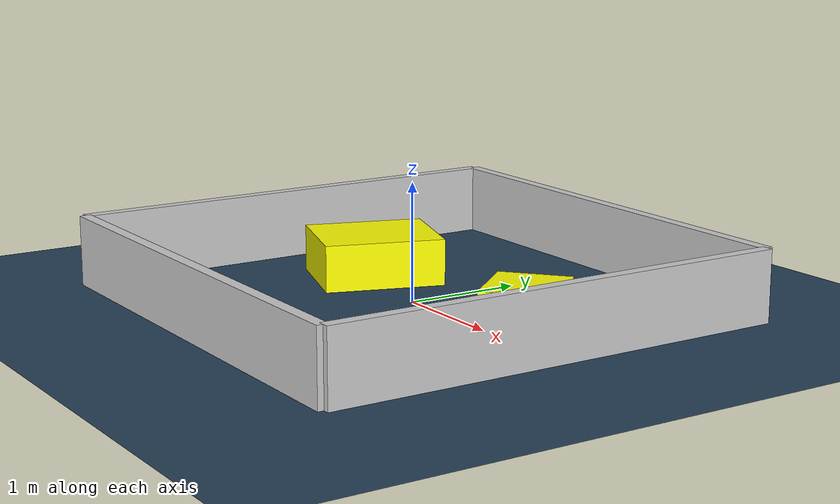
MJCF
<?xml version="1.0" ?>
<mujoco model="generated_environment">
  <option timestep="0.01" integrator="RK4" cone="elliptic"/>
  <default>
    <geom density="1"/>
  </default>
  <asset>
    <texture builtin="gradient" height="3072" rgb1="0.3 0.5 0.7" rgb2="0 0 0" type="skybox" width="512"/>
    <texture builtin="checker" height="300" mark="edge" markrgb="0.8 0.8 0.8" name="groundplane" rgb1="0.2 0.3 0.4" rgb2="0.1 0.2 0.3" type="2d" width="300"/>
    <material name="groundplane" reflectance="0.2" texrepeat="5 5" texture="groundplane" texuniform="true"/>
    <material name="robot" rgba="0.0 1.0 0.0 1"/>
  </asset>
  <worldbody>
    <light dir="0 0 -1" directional="true" pos="0 0 1.5"/>
    <geom condim="4" friction="1.0 0.005 0.001" material="groundplane" name="floor" size="0 0 0.05" type="plane"/>
    <body name="walls">
      <geom name="wall_1" condim="4" pos="-2.0 0.0 0.3" rgba="0.800000011920929 0.800000011920929 0.800000011920929 1.0" size="0.05 2.0 0.3" type="box"/>
      <geom name="wall_2" condim="4" pos="2.0 0.0 0.3" rgba="0.800000011920929 0.800000011920929 0.800000011920929 1.0" size="0.05 2.0 0.3" type="box"/>
      <geom name="wall_3" condim="4" pos="0.0 -2.0 0.3" rgba="0.800000011920929 0.800000011920929 0.800000011920929 1.0" size="2.0 0.05 0.3" type="box"/>
      <geom name="wall_4" condim="4" pos="0.0 2.0 0.3" rgba="0.800000011920929 0.800000011920929 0.800000011920929 1.0" size="2.0 0.05 0.3" type="box"/>
    </body>
    <body name="robot">
      <joint name="joint_x" type="slide" pos="0 0 0" axis="1 0 0"/>
      <joint name="joint_y" type="slide" pos="0 0 0" axis="0 1 0"/>
      <geom name="robot" type="sphere" pos="1.1233388749279989 -1.6104710193673568 0.2" size="0.05" mass="5." friction="1.0 0.005 0.0001" condim="4"/>
      <site name="sensor_ball"/>
    </body>
    <body name="obstacle_1_movable">
      <geom name="obstacle_1_movable" condim="4" pos="1.2602084121879906 0.21979381598706516 0.2" euler="0 0 310.38605966329874" friction="1.0 0.005 0.001" rgba="1 1 0 1" size="0.3222360484650191 0.3046475162745153 0.2" type="box" mass="0.1"/>
      <joint type="free"/>
    </body>
    <body name="obstacle_2_movable">
      <geom name="obstacle_2_movable" condim="4" pos="-0.8810006872130635 0.1748664518338514 0.2" euler="0 0 71.84026567784677" friction="1.0 0.005 0.001" rgba="1 1 0 1" size="0.5160170395017893 0.42310860981165854 0.2" type="box" mass="0.1"/>
      <joint type="free"/>
    </body>
  </worldbody>
  <actuator>
    <motor name="actuator_x" joint="joint_x" gear="1" ctrlrange="-1 1"/>
    <motor name="actuator_y" joint="joint_y" gear="1" ctrlrange="-1 1"/>
  </actuator>
</mujoco>
